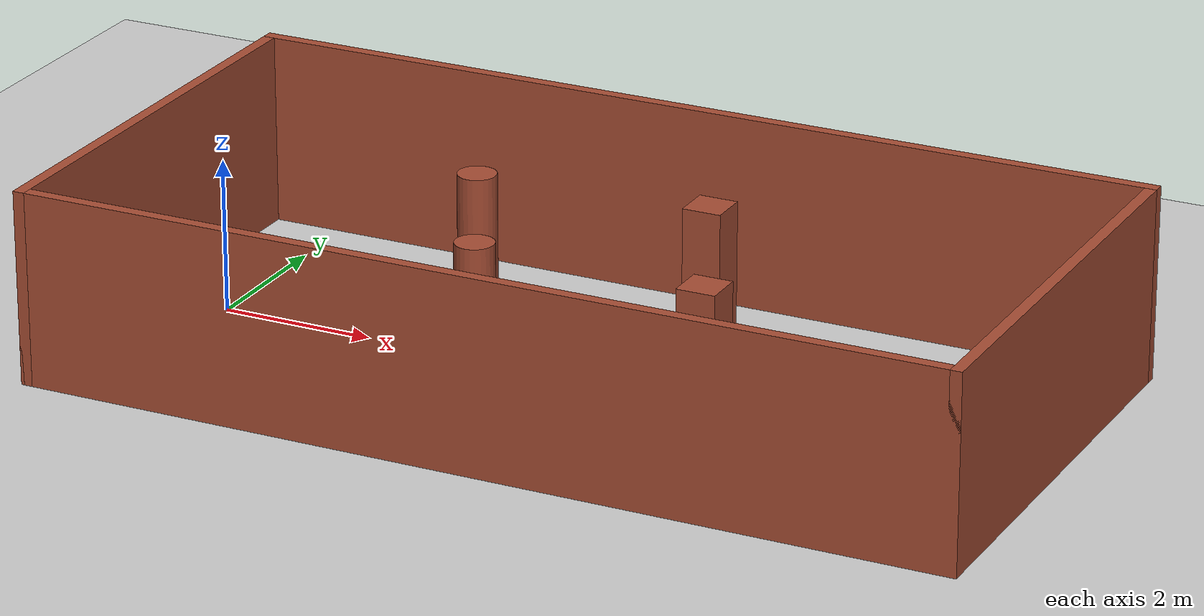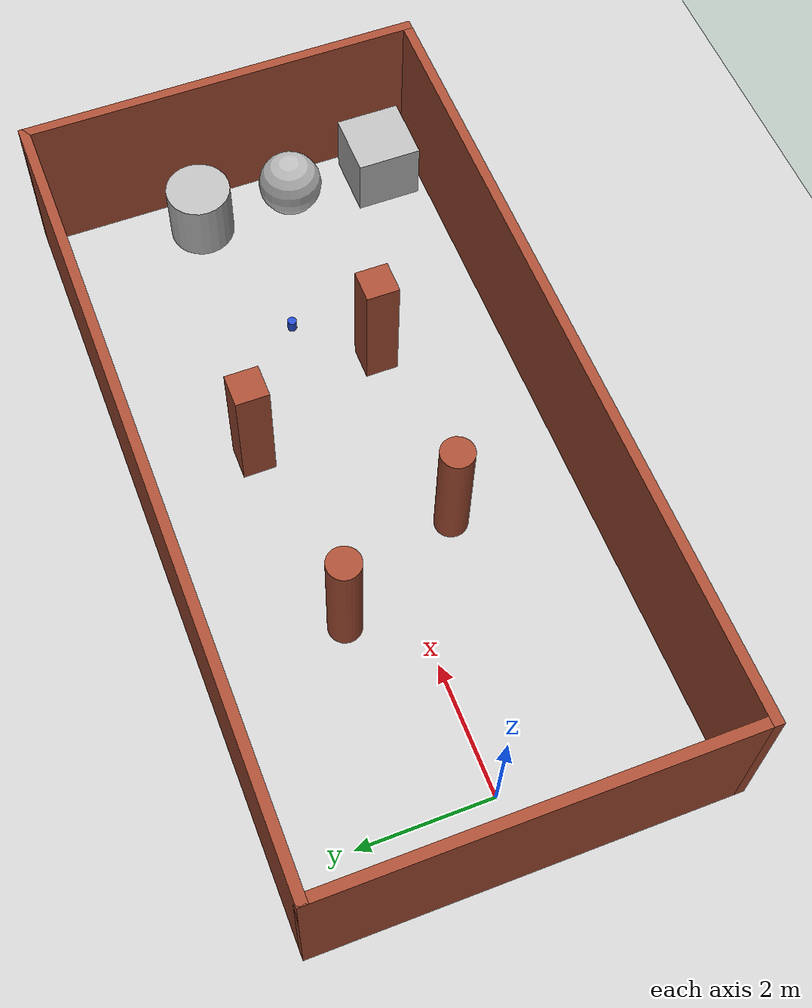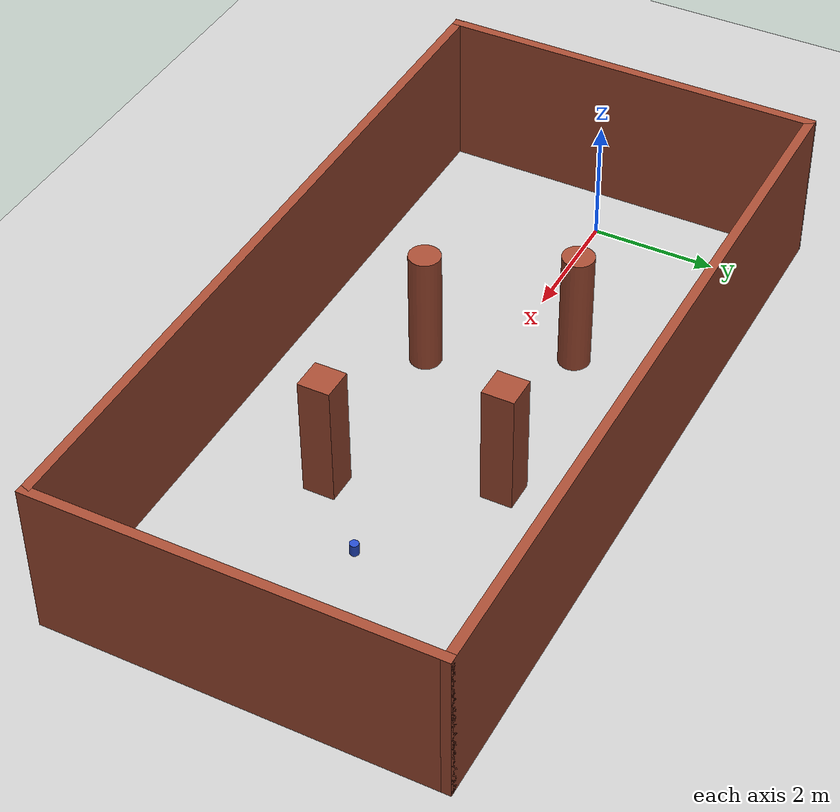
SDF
<sdf version="1.6">
 <world name="default">
  <include><uri>model://ground_plane</uri></include>
  <include><uri>model://sun</uri></include>
  <model name="obstacle_cylinder1">
   <link name="link">
    <inertial>
     <mass>1</mass>
     <inertia><ixx>0.145833</ixx><ixy>0</ixy><ixz>0</ixz><iyy>0.145833</iyy><iyz>0</iyz><izz>0.125</izz></inertia>
    </inertial>
    <visual name="visual">
     <geometry><cylinder><radius>0.25</radius><length>2</length></cylinder></geometry>
     <material>
      <script><uri>file://media/materials/scripts/gazebo.material</uri><name>Gazebo/Bricks</name></script>
      <ambient>1 1 1 1</ambient>
     </material>
    </visual>
    <collision name="collision">
     <geometry><cylinder><radius>0.25</radius><length>2</length></cylinder></geometry>
     <surface>
      <friction><ode><mu>1</mu><mu2>1</mu2><fdir1>0 0 0</fdir1><slip1>0</slip1><slip2>0</slip2></ode></friction>
      <bounce><restitution_coefficient>0</restitution_coefficient><threshold>1e+06</threshold></bounce>
      <contact>
       <collide_without_contact>0</collide_without_contact>
       <collide_without_contact_bitmask>1</collide_without_contact_bitmask>
       <collide_bitmask>1</collide_bitmask>
       <ode>
        <soft_cfm>0</soft_cfm>
        <soft_erp>0.2</soft_erp>
        <kp>1e+13</kp>
        <kd>1</kd>
        <max_vel>0.01</max_vel>
        <min_depth>0</min_depth>
       </ode>
       <bullet>
        <split_impulse>1</split_impulse>
        <split_impulse_penetration_threshold>-0.01</split_impulse_penetration_threshold>
        <soft_cfm>0</soft_cfm>
        <soft_erp>0.2</soft_erp>
        <kp>1e+13</kp>
        <kd>1</kd>
       </bullet>
      </contact>
     </surface>
    </collision>
   </link>
   <static>0</static>
   <pose>3 1 0.99999 0 -0 2e-06</pose>
  </model>
  <model name="obstacle_cylinder2">
   <link name="link">
    <inertial>
     <mass>1</mass>
     <inertia><ixx>0.145833</ixx><ixy>0</ixy><ixz>0</ixz><iyy>0.145833</iyy><iyz>0</iyz><izz>0.125</izz></inertia>
    </inertial>
    <visual name="visual">
     <geometry><cylinder><radius>0.25</radius><length>2</length></cylinder></geometry>
     <material>
      <script><uri>file://media/materials/scripts/gazebo.material</uri><name>Gazebo/Bricks</name></script>
      <ambient>1 1 1 1</ambient>
     </material>
    </visual>
    <collision name="collision">
     <geometry><cylinder><radius>0.25</radius><length>2</length></cylinder></geometry>
     <surface>
      <friction><ode><mu>1</mu><mu2>1</mu2><fdir1>0 0 0</fdir1><slip1>0</slip1><slip2>0</slip2></ode></friction>
      <bounce><restitution_coefficient>0</restitution_coefficient><threshold>1e+06</threshold></bounce>
      <contact>
       <collide_without_contact>0</collide_without_contact>
       <collide_without_contact_bitmask>1</collide_without_contact_bitmask>
       <collide_bitmask>1</collide_bitmask>
       <ode>
        <soft_cfm>0</soft_cfm>
        <soft_erp>0.2</soft_erp>
        <kp>1e+13</kp>
        <kd>1</kd>
        <max_vel>0.01</max_vel>
        <min_depth>0</min_depth>
       </ode>
       <bullet>
        <split_impulse>1</split_impulse>
        <split_impulse_penetration_threshold>-0.01</split_impulse_penetration_threshold>
        <soft_cfm>0</soft_cfm>
        <soft_erp>0.2</soft_erp>
        <kp>1e+13</kp>
        <kd>1</kd>
       </bullet>
      </contact>
     </surface>
    </collision>
   </link>
   <static>0</static>
   <pose>4 -1 0.99999 0 -0 2e-06</pose>
  </model>
  <model name="obstacle_squared1">
   <link name="link">
    <inertial>
     <mass>1</mass>
     <inertia>
      <ixx>0.166667</ixx>
      <ixy>0</ixy>
      <ixz>0</ixz>
      <iyy>0.166667</iyy>
      <iyz>0</iyz>
      <izz>0.166667</izz>
     </inertia>
    </inertial>
    <visual name="visual">
     <geometry><box><size>0.5 0.5 2</size></box></geometry>
     <material>
      <script><uri>file://media/materials/scripts/gazebo.material</uri><name>Gazebo/Bricks</name></script>
      <ambient>1 1 1 1</ambient>
     </material>
    </visual>
    <collision name="collision">
     <geometry><box><size>0.5 0.5 2</size></box></geometry>
     <surface>
      <friction><ode><mu>1</mu><mu2>1</mu2><fdir1>0 0 0</fdir1><slip1>0</slip1><slip2>0</slip2></ode></friction>
      <bounce><restitution_coefficient>0</restitution_coefficient><threshold>1e+06</threshold></bounce>
      <contact>
       <collide_without_contact>0</collide_without_contact>
       <collide_without_contact_bitmask>1</collide_without_contact_bitmask>
       <collide_bitmask>1</collide_bitmask>
       <ode>
        <soft_cfm>0</soft_cfm>
        <soft_erp>0.2</soft_erp>
        <kp>1e+13</kp>
        <kd>1</kd>
        <max_vel>0.01</max_vel>
        <min_depth>0</min_depth>
       </ode>
       <bullet>
        <split_impulse>1</split_impulse>
        <split_impulse_penetration_threshold>-0.01</split_impulse_penetration_threshold>
        <soft_cfm>0</soft_cfm>
        <soft_erp>0.2</soft_erp>
        <kp>1e+13</kp>
        <kd>1</kd>
       </bullet>
      </contact>
     </surface>
    </collision>
   </link>
   <static>0</static>
   <pose>6 1.30001 1 -3e-06 -2e-06 1.7e-05</pose>
  </model>
  <model name="obstacle_squared2">
   <link name="link">
    <inertial>
     <mass>1</mass>
     <inertia>
      <ixx>0.166667</ixx>
      <ixy>0</ixy>
      <ixz>0</ixz>
      <iyy>0.166667</iyy>
      <iyz>0</iyz>
      <izz>0.166667</izz>
     </inertia>
    </inertial>
    <visual name="visual">
     <geometry><box><size>0.5 0.5 2</size></box></geometry>
     <material>
      <script><uri>file://media/materials/scripts/gazebo.material</uri><name>Gazebo/Bricks</name></script>
      <ambient>1 1 1 1</ambient>
     </material>
    </visual>
    <collision name="collision">
     <geometry><box><size>0.5 0.5 2</size></box></geometry>
     <surface>
      <friction><ode><mu>1</mu><mu2>1</mu2><fdir1>0 0 0</fdir1><slip1>0</slip1><slip2>0</slip2></ode></friction>
      <bounce><restitution_coefficient>0</restitution_coefficient><threshold>1e+06</threshold></bounce>
      <contact>
       <collide_without_contact>0</collide_without_contact>
       <collide_without_contact_bitmask>1</collide_without_contact_bitmask>
       <collide_bitmask>1</collide_bitmask>
       <ode>
        <soft_cfm>0</soft_cfm>
        <soft_erp>0.2</soft_erp>
        <kp>1e+13</kp>
        <kd>1</kd>
        <max_vel>0.01</max_vel>
        <min_depth>0</min_depth>
       </ode>
       <bullet>
        <split_impulse>1</split_impulse>
        <split_impulse_penetration_threshold>-0.01</split_impulse_penetration_threshold>
        <soft_cfm>0</soft_cfm>
        <soft_erp>0.2</soft_erp>
        <kp>1e+13</kp>
        <kd>1</kd>
       </bullet>
      </contact>
     </surface>
    </collision>
   </link>
   <static>0</static>
   <pose>7 -1 1 1e-06 -0 0.000154</pose>
  </model>
  <model name="goal">
   <link name="link">
    <inertial>
     <mass>1</mass>
     <inertia><ixx>0.145833</ixx><ixy>0</ixy><ixz>0</ixz><iyy>0.145833</iyy><iyz>0</iyz><izz>0.125</izz></inertia>
    </inertial>
    <gravity>0</gravity>
    <visual name="visual">
     <geometry><cylinder><radius>0.07</radius><length>0.35</length></cylinder></geometry>
     <material>
      <script><name>Gazebo/blue</name><uri>file://media/materials/scripts/gazebo.material</uri></script>
      <ambient>0.3 0.3 0.3 1</ambient>
      <diffuse>0.7 0.7 0.7 1</diffuse>
      <specular>0.01 0.01 0.01 1</specular>
      <emissive>0.6 0 0.6 1</emissive>
      <shader type="vertex"><normal_map>__default__</normal_map></shader>
     </material>
    </visual>
   </link>
   <static>0</static>
   <allow_auto_disable>0</allow_auto_disable>
   <pose>8 0 0 0 -0 0</pose>
  </model>
  <model name="dep_nav_building1">
   <pose>5 0 0 0 -0 0</pose>
   <link name="Wall_0">
    <collision name="Wall_0_Collision">
     <geometry><box><size>12.15 0.15 2.5</size></box></geometry>
     <pose>0 0 1.25 0 -0 0</pose>
    </collision>
    <visual name="Wall_0_Visual">
     <pose>0 0 1.25 0 -0 0</pose>
     <geometry><box><size>12.15 0.15 2.5</size></box></geometry>
     <material>
      <script><uri>file://media/materials/scripts/gazebo.material</uri><name>Gazebo/Bricks</name></script>
      <ambient>1 1 1 1</ambient>
     </material>
     <meta><layer>0</layer></meta>
    </visual>
    <pose>-0 -3.0135 0 0 -0 0</pose>
   </link>
   <link name="Wall_2">
    <collision name="Wall_2_Collision">
     <geometry><box><size>6.177 0.15 2.5</size></box></geometry>
     <pose>0 0 1.25 0 -0 0</pose>
    </collision>
    <visual name="Wall_2_Visual">
     <pose>0 0 1.25 0 -0 0</pose>
     <geometry><box><size>6.177 0.15 2.5</size></box></geometry>
     <material>
      <script><uri>file://media/materials/scripts/gazebo.material</uri><name>Gazebo/Bricks</name></script>
      <ambient>1 1 1 1</ambient>
     </material>
     <meta><layer>0</layer></meta>
    </visual>
    <pose>-6 -0 0 0 -0 1.5708</pose>
   </link>
   <link name="Wall_4">
    <collision name="Wall_4_Collision">
     <geometry><box><size>6.177 0.15 2.5</size></box></geometry>
     <pose>0 0 1.25 0 -0 0</pose>
    </collision>
    <visual name="Wall_4_Visual">
     <pose>0 0 1.25 0 -0 0</pose>
     <geometry><box><size>6.177 0.15 2.5</size></box></geometry>
     <material>
      <script><uri>file://media/materials/scripts/gazebo.material</uri><name>Gazebo/Bricks</name></script>
      <ambient>1 1 1 1</ambient>
     </material>
     <meta><layer>0</layer></meta>
    </visual>
    <pose>6 -0 0 0 -0 1.5708</pose>
   </link>
   <link name="Wall_6">
    <collision name="Wall_6_Collision">
     <geometry><box><size>12.15 0.15 2.5</size></box></geometry>
     <pose>0 0 1.25 0 -0 0</pose>
    </collision>
    <visual name="Wall_6_Visual">
     <pose>0 0 1.25 0 -0 0</pose>
     <geometry><box><size>12.15 0.15 2.5</size></box></geometry>
     <material>
      <script><uri>file://media/materials/scripts/gazebo.material</uri><name>Gazebo/Bricks</name></script>
      <ambient>1 1 1 1</ambient>
     </material>
     <meta><layer>0</layer></meta>
    </visual>
    <pose>-0 3.0135 0 0 -0 0</pose>
   </link>
   <static>1</static>
  </model>
  <gravity>0 0 -9.8</gravity>
  <magnetic_field>6e-06 2.3e-05 -4.2e-05</magnetic_field>
  <atmosphere type="adiabatic"/>
  <physics name="default_physics" default="0" type="ode">
   <max_step_size>0.001</max_step_size>
   <real_time_factor>1</real_time_factor>
   <real_time_update_rate>1000</real_time_update_rate>
  </physics>
  <scene><ambient>0.4 0.4 0.4 1</ambient><background>0.7 0.7 0.7 1</background><shadows>1</shadows></scene>
  <spherical_coordinates>
   <surface_model>EARTH_WGS84</surface_model>
   <latitude_deg>0</latitude_deg>
   <longitude_deg>0</longitude_deg>
   <elevation>0</elevation>
   <heading_deg>0</heading_deg>
  </spherical_coordinates>
  <model name="textured_shapes">
   <pose>10.297 -0.798449 0.5 0 -0 0</pose>
   <link name="box">
    <pose>0 -1.5 0 0 -0 0</pose>
    <collision name="collision"><geometry><box><size>1 1 1</size></box></geometry></collision>
    <visual name="visual">
     <geometry><box><size>1 1 1</size></box></geometry>
     <material>
      <script>
       <uri>model://textured_shapes/materials/scripts</uri>
       <uri>model://textured_shapes/materials/textures</uri>
       <name>TexturedShape/Squares</name>
      </script>
     </material>
    </visual>
    <inertial>
     <inertia><ixx>1</ixx><ixy>0</ixy><ixz>0</ixz><iyy>1</iyy><iyz>0</iyz><izz>1</izz></inertia>
     <mass>1</mass>
    </inertial>
   </link>
   <link name="sphere">
    <collision name="collision"><geometry><sphere><radius>0.5</radius></sphere></geometry></collision>
    <visual name="visual">
     <geometry><sphere><radius>0.5</radius></sphere></geometry>
     <material>
      <script>
       <uri>model://textured_shapes/materials/scripts</uri>
       <uri>model://textured_shapes/materials/textures</uri>
       <name>TexturedShape/Squares</name>
      </script>
     </material>
    </visual>
    <inertial>
     <inertia><ixx>1</ixx><ixy>0</ixy><ixz>0</ixz><iyy>1</iyy><iyz>0</iyz><izz>1</izz></inertia>
     <mass>1</mass>
    </inertial>
   </link>
   <link name="cylinder">
    <pose>0 1.5 0 0 -0 0</pose>
    <collision name="collision">
     <geometry><cylinder><radius>0.5</radius><length>1</length></cylinder></geometry>
    </collision>
    <visual name="visual">
     <geometry><cylinder><radius>0.5</radius><length>1</length></cylinder></geometry>
     <material>
      <script>
       <uri>model://textured_shapes/materials/scripts</uri>
       <uri>model://textured_shapes/materials/textures</uri>
       <name>TexturedShape/Squares</name>
      </script>
     </material>
    </visual>
    <inertial>
     <inertia><ixx>1</ixx><ixy>0</ixy><ixz>0</ixz><iyy>1</iyy><iyz>0</iyz><izz>1</izz></inertia>
     <mass>1</mass>
    </inertial>
   </link>
  </model>
 </world>
</sdf>
